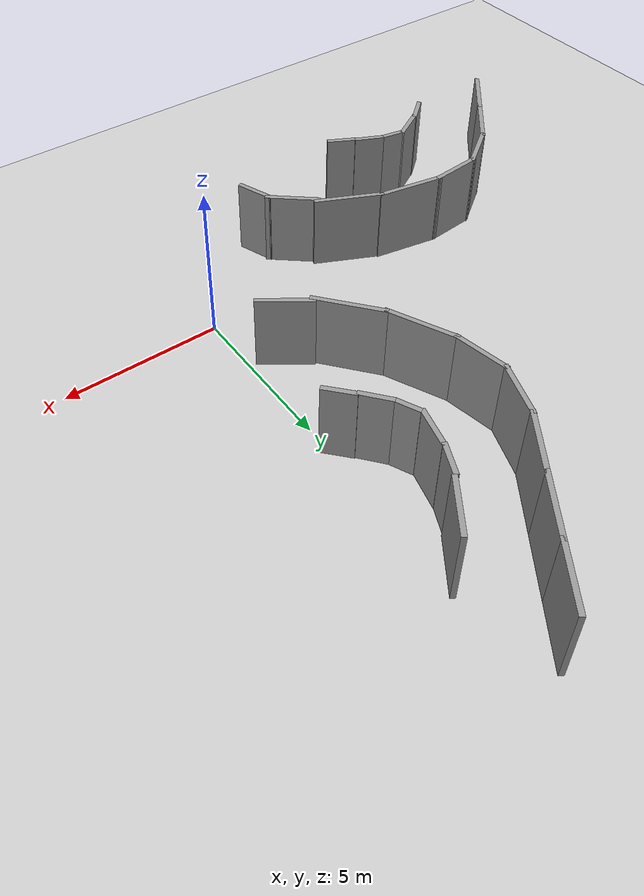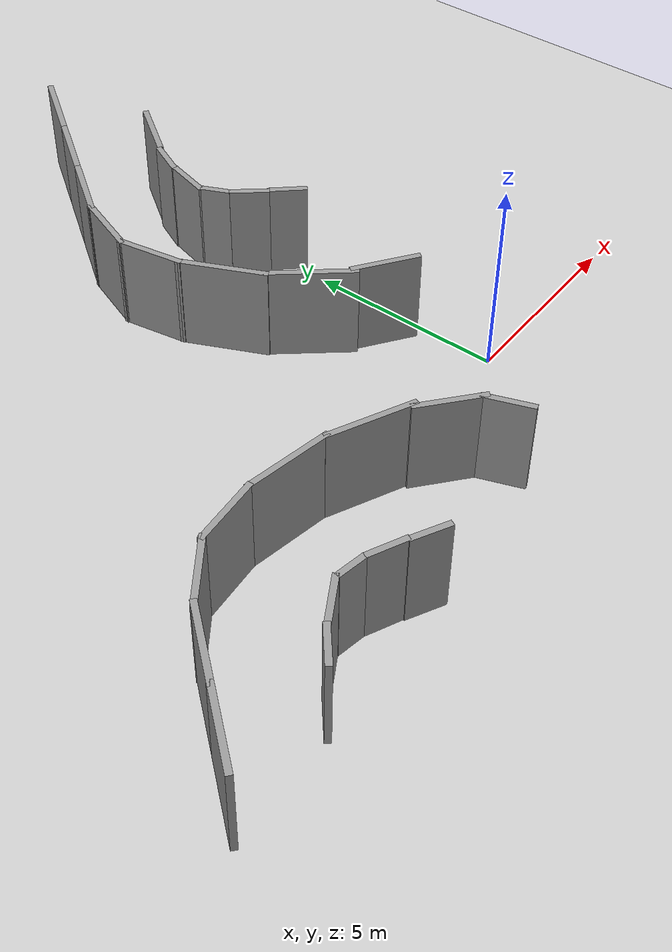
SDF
<sdf version="1.6">
 <world name="default">
  <model name="ground_plane">
   <static>1</static>
   <link name="link">
    <collision name="collision">
     <geometry><plane><normal>0 0 1</normal><size>100 100</size></plane></geometry>
     <surface><friction><ode><mu>100</mu><mu2>50</mu2></ode></friction></surface>
    </collision>
    <visual name="visual">
     <cast_shadows>0</cast_shadows>
     <geometry><plane><normal>0 0 1</normal><size>100 100</size></plane></geometry>
     <material>
      <script><uri>file://media/materials/scripts/gazebo.material</uri><name>Gazebo/Grey</name></script>
     </material>
    </visual>
   </link>
  </model>
  <model name="c-Snail_v3">
   <link name="Wall_34">
    <pose>5.14178 5.70521 0 0 -0 3.14159</pose>
    <visual name="Wall_34_Visual">
     <pose>0 0 1.25 0 -0 0</pose>
     <geometry><box><size>2 0.15 2.5</size></box></geometry>
     <material>
      <script><uri>file://media/materials/scripts/gazebo.material</uri><name>Gazebo/Grey</name></script>
      <ambient>1 1 1 1</ambient>
     </material>
     <meta><layer>0</layer></meta>
    </visual>
    <collision name="Wall_34_Collision">
     <pose>0 0 1.25 0 -0 0</pose>
     <geometry><box><size>2 0.15 2.5</size></box></geometry>
     <surface>
      <friction>
       <ode><mu>1</mu><mu2>1</mu2><fdir1>0 0 0</fdir1><slip1>0</slip1><slip2>0</slip2></ode>
       <torsional>
        <coefficient>1</coefficient>
        <patch_radius>0</patch_radius>
        <surface_radius>0</surface_radius>
        <use_patch_radius>1</use_patch_radius>
        <ode><slip>0</slip></ode>
       </torsional>
      </friction>
      <bounce><restitution_coefficient>0</restitution_coefficient><threshold>1e+06</threshold></bounce>
      <contact>
       <collide_without_contact>0</collide_without_contact>
       <collide_without_contact_bitmask>1</collide_without_contact_bitmask>
       <collide_bitmask>1</collide_bitmask>
       <ode>
        <soft_cfm>0</soft_cfm>
        <soft_erp>0.2</soft_erp>
        <kp>1e+13</kp>
        <kd>1</kd>
        <max_vel>0.01</max_vel>
        <min_depth>0</min_depth>
       </ode>
       <bullet>
        <split_impulse>1</split_impulse>
        <split_impulse_penetration_threshold>-0.01</split_impulse_penetration_threshold>
        <soft_cfm>0</soft_cfm>
        <soft_erp>0.2</soft_erp>
        <kp>1e+13</kp>
        <kd>1</kd>
       </bullet>
      </contact>
     </surface>
    </collision>
   </link>
   <link name="Wall_35">
    <pose>3.29178 5.70521 0 0 -0 3.14159</pose>
    <visual name="Wall_35_Visual">
     <pose>0 0 1.25 0 -0 0</pose>
     <geometry><box><size>2 0.15 2.5</size></box></geometry>
     <material>
      <script><uri>file://media/materials/scripts/gazebo.material</uri><name>Gazebo/Grey</name></script>
      <ambient>1 1 1 1</ambient>
     </material>
     <meta><layer>0</layer></meta>
    </visual>
    <collision name="Wall_35_Collision">
     <pose>0 0 1.25 0 -0 0</pose>
     <geometry><box><size>2 0.15 2.5</size></box></geometry>
     <surface>
      <friction>
       <ode><mu>1</mu><mu2>1</mu2><fdir1>0 0 0</fdir1><slip1>0</slip1><slip2>0</slip2></ode>
       <torsional>
        <coefficient>1</coefficient>
        <patch_radius>0</patch_radius>
        <surface_radius>0</surface_radius>
        <use_patch_radius>1</use_patch_radius>
        <ode><slip>0</slip></ode>
       </torsional>
      </friction>
      <bounce><restitution_coefficient>0</restitution_coefficient><threshold>1e+06</threshold></bounce>
      <contact>
       <collide_without_contact>0</collide_without_contact>
       <collide_without_contact_bitmask>1</collide_without_contact_bitmask>
       <collide_bitmask>1</collide_bitmask>
       <ode>
        <soft_cfm>0</soft_cfm>
        <soft_erp>0.2</soft_erp>
        <kp>1e+13</kp>
        <kd>1</kd>
        <max_vel>0.01</max_vel>
        <min_depth>0</min_depth>
       </ode>
       <bullet>
        <split_impulse>1</split_impulse>
        <split_impulse_penetration_threshold>-0.01</split_impulse_penetration_threshold>
        <soft_cfm>0</soft_cfm>
        <soft_erp>0.2</soft_erp>
        <kp>1e+13</kp>
        <kd>1</kd>
       </bullet>
      </contact>
     </surface>
    </collision>
   </link>
   <link name="Wall_36">
    <pose>1.44178 5.70521 0 0 -0 3.14159</pose>
    <visual name="Wall_36_Visual">
     <pose>0 0 1.25 0 -0 0</pose>
     <geometry><box><size>2 0.15 2.5</size></box></geometry>
     <material>
      <script><uri>file://media/materials/scripts/gazebo.material</uri><name>Gazebo/Grey</name></script>
      <ambient>1 1 1 1</ambient>
     </material>
     <meta><layer>0</layer></meta>
    </visual>
    <collision name="Wall_36_Collision">
     <pose>0 0 1.25 0 -0 0</pose>
     <geometry><box><size>2 0.15 2.5</size></box></geometry>
     <surface>
      <friction>
       <ode><mu>1</mu><mu2>1</mu2><fdir1>0 0 0</fdir1><slip1>0</slip1><slip2>0</slip2></ode>
       <torsional>
        <coefficient>1</coefficient>
        <patch_radius>0</patch_radius>
        <surface_radius>0</surface_radius>
        <use_patch_radius>1</use_patch_radius>
        <ode><slip>0</slip></ode>
       </torsional>
      </friction>
      <bounce><restitution_coefficient>0</restitution_coefficient><threshold>1e+06</threshold></bounce>
      <contact>
       <collide_without_contact>0</collide_without_contact>
       <collide_without_contact_bitmask>1</collide_without_contact_bitmask>
       <collide_bitmask>1</collide_bitmask>
       <ode>
        <soft_cfm>0</soft_cfm>
        <soft_erp>0.2</soft_erp>
        <kp>1e+13</kp>
        <kd>1</kd>
        <max_vel>0.01</max_vel>
        <min_depth>0</min_depth>
       </ode>
       <bullet>
        <split_impulse>1</split_impulse>
        <split_impulse_penetration_threshold>-0.01</split_impulse_penetration_threshold>
        <soft_cfm>0</soft_cfm>
        <soft_erp>0.2</soft_erp>
        <kp>1e+13</kp>
        <kd>1</kd>
       </bullet>
      </contact>
     </surface>
    </collision>
   </link>
   <link name="Wall_37">
    <pose>-0.255959 5.49815 0 0 0 -2.87979</pose>
    <visual name="Wall_37_Visual">
     <pose>0 0 1.25 0 -0 0</pose>
     <geometry><box><size>1.75 0.15 2.5</size></box></geometry>
     <material>
      <script><uri>file://media/materials/scripts/gazebo.material</uri><name>Gazebo/Grey</name></script>
      <ambient>1 1 1 1</ambient>
     </material>
     <meta><layer>0</layer></meta>
    </visual>
    <collision name="Wall_37_Collision">
     <pose>0 0 1.25 0 -0 0</pose>
     <geometry><box><size>1.75 0.15 2.5</size></box></geometry>
     <surface>
      <friction>
       <ode><mu>1</mu><mu2>1</mu2><fdir1>0 0 0</fdir1><slip1>0</slip1><slip2>0</slip2></ode>
       <torsional>
        <coefficient>1</coefficient>
        <patch_radius>0</patch_radius>
        <surface_radius>0</surface_radius>
        <use_patch_radius>1</use_patch_radius>
        <ode><slip>0</slip></ode>
       </torsional>
      </friction>
      <bounce><restitution_coefficient>0</restitution_coefficient><threshold>1e+06</threshold></bounce>
      <contact>
       <collide_without_contact>0</collide_without_contact>
       <collide_without_contact_bitmask>1</collide_without_contact_bitmask>
       <collide_bitmask>1</collide_bitmask>
       <ode>
        <soft_cfm>0</soft_cfm>
        <soft_erp>0.2</soft_erp>
        <kp>1e+13</kp>
        <kd>1</kd>
        <max_vel>0.01</max_vel>
        <min_depth>0</min_depth>
       </ode>
       <bullet>
        <split_impulse>1</split_impulse>
        <split_impulse_penetration_threshold>-0.01</split_impulse_penetration_threshold>
        <soft_cfm>0</soft_cfm>
        <soft_erp>0.2</soft_erp>
        <kp>1e+13</kp>
        <kd>1</kd>
       </bullet>
      </contact>
     </surface>
    </collision>
   </link>
   <link name="Wall_38">
    <pose>-1.59438 4.72541 0 0 0 -2.35619</pose>
    <visual name="Wall_38_Visual">
     <pose>0 0 1.25 0 -0 0</pose>
     <geometry><box><size>1.75 0.15 2.5</size></box></geometry>
     <material>
      <script><uri>file://media/materials/scripts/gazebo.material</uri><name>Gazebo/Grey</name></script>
      <ambient>1 1 1 1</ambient>
     </material>
     <meta><layer>0</layer></meta>
    </visual>
    <collision name="Wall_38_Collision">
     <pose>0 0 1.25 0 -0 0</pose>
     <geometry><box><size>1.75 0.15 2.5</size></box></geometry>
     <surface>
      <friction>
       <ode><mu>1</mu><mu2>1</mu2><fdir1>0 0 0</fdir1><slip1>0</slip1><slip2>0</slip2></ode>
       <torsional>
        <coefficient>1</coefficient>
        <patch_radius>0</patch_radius>
        <surface_radius>0</surface_radius>
        <use_patch_radius>1</use_patch_radius>
        <ode><slip>0</slip></ode>
       </torsional>
      </friction>
      <bounce><restitution_coefficient>0</restitution_coefficient><threshold>1e+06</threshold></bounce>
      <contact>
       <collide_without_contact>0</collide_without_contact>
       <collide_without_contact_bitmask>1</collide_without_contact_bitmask>
       <collide_bitmask>1</collide_bitmask>
       <ode>
        <soft_cfm>0</soft_cfm>
        <soft_erp>0.2</soft_erp>
        <kp>1e+13</kp>
        <kd>1</kd>
        <max_vel>0.01</max_vel>
        <min_depth>0</min_depth>
       </ode>
       <bullet>
        <split_impulse>1</split_impulse>
        <split_impulse_penetration_threshold>-0.01</split_impulse_penetration_threshold>
        <soft_cfm>0</soft_cfm>
        <soft_erp>0.2</soft_erp>
        <kp>1e+13</kp>
        <kd>1</kd>
       </bullet>
      </contact>
     </surface>
    </collision>
   </link>
   <link name="Wall_39">
    <pose>-2.68507 3.2504 0 0 0 -2.0944</pose>
    <visual name="Wall_39_Visual">
     <pose>0 0 1.25 0 -0 0</pose>
     <geometry><box><size>2.25 0.15 2.5</size></box></geometry>
     <material>
      <script><uri>file://media/materials/scripts/gazebo.material</uri><name>Gazebo/Grey</name></script>
      <ambient>1 1 1 1</ambient>
     </material>
     <meta><layer>0</layer></meta>
    </visual>
    <collision name="Wall_39_Collision">
     <pose>0 0 1.25 0 -0 0</pose>
     <geometry><box><size>2.25 0.15 2.5</size></box></geometry>
     <surface>
      <friction>
       <ode><mu>1</mu><mu2>1</mu2><fdir1>0 0 0</fdir1><slip1>0</slip1><slip2>0</slip2></ode>
       <torsional>
        <coefficient>1</coefficient>
        <patch_radius>0</patch_radius>
        <surface_radius>0</surface_radius>
        <use_patch_radius>1</use_patch_radius>
        <ode><slip>0</slip></ode>
       </torsional>
      </friction>
      <bounce><restitution_coefficient>0</restitution_coefficient><threshold>1e+06</threshold></bounce>
      <contact>
       <collide_without_contact>0</collide_without_contact>
       <collide_without_contact_bitmask>1</collide_without_contact_bitmask>
       <collide_bitmask>1</collide_bitmask>
       <ode>
        <soft_cfm>0</soft_cfm>
        <soft_erp>0.2</soft_erp>
        <kp>1e+13</kp>
        <kd>1</kd>
        <max_vel>0.01</max_vel>
        <min_depth>0</min_depth>
       </ode>
       <bullet>
        <split_impulse>1</split_impulse>
        <split_impulse_penetration_threshold>-0.01</split_impulse_penetration_threshold>
        <soft_cfm>0</soft_cfm>
        <soft_erp>0.2</soft_erp>
        <kp>1e+13</kp>
        <kd>1</kd>
       </bullet>
      </contact>
     </surface>
    </collision>
   </link>
   <link name="Wall_40">
    <pose>-3.4661 1.30505 0 0 0 -1.8326</pose>
    <visual name="Wall_40_Visual">
     <pose>0 0 1.25 0 -0 0</pose>
     <geometry><box><size>2.25 0.15 2.5</size></box></geometry>
     <material>
      <script><uri>file://media/materials/scripts/gazebo.material</uri><name>Gazebo/Grey</name></script>
      <ambient>1 1 1 1</ambient>
     </material>
     <meta><layer>0</layer></meta>
    </visual>
    <collision name="Wall_40_Collision">
     <pose>0 0 1.25 0 -0 0</pose>
     <geometry><box><size>2.25 0.15 2.5</size></box></geometry>
     <surface>
      <friction>
       <ode><mu>1</mu><mu2>1</mu2><fdir1>0 0 0</fdir1><slip1>0</slip1><slip2>0</slip2></ode>
       <torsional>
        <coefficient>1</coefficient>
        <patch_radius>0</patch_radius>
        <surface_radius>0</surface_radius>
        <use_patch_radius>1</use_patch_radius>
        <ode><slip>0</slip></ode>
       </torsional>
      </friction>
      <bounce><restitution_coefficient>0</restitution_coefficient><threshold>1e+06</threshold></bounce>
      <contact>
       <collide_without_contact>0</collide_without_contact>
       <collide_without_contact_bitmask>1</collide_without_contact_bitmask>
       <collide_bitmask>1</collide_bitmask>
       <ode>
        <soft_cfm>0</soft_cfm>
        <soft_erp>0.2</soft_erp>
        <kp>1e+13</kp>
        <kd>1</kd>
        <max_vel>0.01</max_vel>
        <min_depth>0</min_depth>
       </ode>
       <bullet>
        <split_impulse>1</split_impulse>
        <split_impulse_penetration_threshold>-0.01</split_impulse_penetration_threshold>
        <soft_cfm>0</soft_cfm>
        <soft_erp>0.2</soft_erp>
        <kp>1e+13</kp>
        <kd>1</kd>
       </bullet>
      </contact>
     </surface>
    </collision>
   </link>
   <link name="Wall_41">
    <pose>-3.63808 -0.467586 0 0 0 -1.5708</pose>
    <visual name="Wall_41_Visual">
     <pose>0 0 1.25 0 -0 0</pose>
     <geometry><box><size>1.75 0.15 2.5</size></box></geometry>
     <material>
      <script><uri>file://media/materials/scripts/gazebo.material</uri><name>Gazebo/Grey</name></script>
      <ambient>1 1 1 1</ambient>
     </material>
     <meta><layer>0</layer></meta>
    </visual>
    <collision name="Wall_41_Collision">
     <pose>0 0 1.25 0 -0 0</pose>
     <geometry><box><size>1.75 0.15 2.5</size></box></geometry>
     <surface>
      <friction>
       <ode><mu>1</mu><mu2>1</mu2><fdir1>0 0 0</fdir1><slip1>0</slip1><slip2>0</slip2></ode>
       <torsional>
        <coefficient>1</coefficient>
        <patch_radius>0</patch_radius>
        <surface_radius>0</surface_radius>
        <use_patch_radius>1</use_patch_radius>
        <ode><slip>0</slip></ode>
       </torsional>
      </friction>
      <bounce><restitution_coefficient>0</restitution_coefficient><threshold>1e+06</threshold></bounce>
      <contact>
       <collide_without_contact>0</collide_without_contact>
       <collide_without_contact_bitmask>1</collide_without_contact_bitmask>
       <collide_bitmask>1</collide_bitmask>
       <ode>
        <soft_cfm>0</soft_cfm>
        <soft_erp>0.2</soft_erp>
        <kp>1e+13</kp>
        <kd>1</kd>
        <max_vel>0.01</max_vel>
        <min_depth>0</min_depth>
       </ode>
       <bullet>
        <split_impulse>1</split_impulse>
        <split_impulse_penetration_threshold>-0.01</split_impulse_penetration_threshold>
        <soft_cfm>0</soft_cfm>
        <soft_erp>0.2</soft_erp>
        <kp>1e+13</kp>
        <kd>1</kd>
       </bullet>
      </contact>
     </surface>
    </collision>
   </link>
   <link name="Wall_61">
    <pose>3.31404 3.52063 0 0 -0 3.14159</pose>
    <visual name="Wall_61_Visual">
     <pose>0 0 1.25 0 -0 0</pose>
     <geometry><box><size>1.75 0.15 2.5</size></box></geometry>
     <material>
      <script><uri>file://media/materials/scripts/gazebo.material</uri><name>Gazebo/Grey</name></script>
      <ambient>1 1 1 1</ambient>
     </material>
     <meta><layer>0</layer></meta>
    </visual>
    <collision name="Wall_61_Collision">
     <pose>0 0 1.25 0 -0 0</pose>
     <geometry><box><size>1.75 0.15 2.5</size></box></geometry>
     <surface>
      <friction>
       <ode><mu>1</mu><mu2>1</mu2><fdir1>0 0 0</fdir1><slip1>0</slip1><slip2>0</slip2></ode>
       <torsional>
        <coefficient>1</coefficient>
        <patch_radius>0</patch_radius>
        <surface_radius>0</surface_radius>
        <use_patch_radius>1</use_patch_radius>
        <ode><slip>0</slip></ode>
       </torsional>
      </friction>
      <bounce><restitution_coefficient>0</restitution_coefficient><threshold>1e+06</threshold></bounce>
      <contact>
       <collide_without_contact>0</collide_without_contact>
       <collide_without_contact_bitmask>1</collide_without_contact_bitmask>
       <collide_bitmask>1</collide_bitmask>
       <ode>
        <soft_cfm>0</soft_cfm>
        <soft_erp>0.2</soft_erp>
        <kp>1e+13</kp>
        <kd>1</kd>
        <max_vel>0.01</max_vel>
        <min_depth>0</min_depth>
       </ode>
       <bullet>
        <split_impulse>1</split_impulse>
        <split_impulse_penetration_threshold>-0.01</split_impulse_penetration_threshold>
        <soft_cfm>0</soft_cfm>
        <soft_erp>0.2</soft_erp>
        <kp>1e+13</kp>
        <kd>1</kd>
       </bullet>
      </contact>
     </surface>
    </collision>
   </link>
   <link name="Wall_62">
    <pose>1.97453 3.47402 0 0 0 -2.96184</pose>
    <visual name="Wall_62_Visual">
     <pose>0 0 1.25 0 -0 0</pose>
     <geometry><box><size>1 0.15 2.5</size></box></geometry>
     <material>
      <script><uri>file://media/materials/scripts/gazebo.material</uri><name>Gazebo/Grey</name></script>
      <ambient>1 1 1 1</ambient>
     </material>
     <meta><layer>0</layer></meta>
    </visual>
    <collision name="Wall_62_Collision">
     <pose>0 0 1.25 0 -0 0</pose>
     <geometry><box><size>1 0.15 2.5</size></box></geometry>
     <surface>
      <friction>
       <ode><mu>1</mu><mu2>1</mu2><fdir1>0 0 0</fdir1><slip1>0</slip1><slip2>0</slip2></ode>
       <torsional>
        <coefficient>1</coefficient>
        <patch_radius>0</patch_radius>
        <surface_radius>0</surface_radius>
        <use_patch_radius>1</use_patch_radius>
        <ode><slip>0</slip></ode>
       </torsional>
      </friction>
      <bounce><restitution_coefficient>0</restitution_coefficient><threshold>1e+06</threshold></bounce>
      <contact>
       <collide_without_contact>0</collide_without_contact>
       <collide_without_contact_bitmask>1</collide_without_contact_bitmask>
       <collide_bitmask>1</collide_bitmask>
       <ode>
        <soft_cfm>0</soft_cfm>
        <soft_erp>0.2</soft_erp>
        <kp>1e+13</kp>
        <kd>1</kd>
        <max_vel>0.01</max_vel>
        <min_depth>0</min_depth>
       </ode>
       <bullet>
        <split_impulse>1</split_impulse>
        <split_impulse_penetration_threshold>-0.01</split_impulse_penetration_threshold>
        <soft_cfm>0</soft_cfm>
        <soft_erp>0.2</soft_erp>
        <kp>1e+13</kp>
        <kd>1</kd>
       </bullet>
      </contact>
     </surface>
    </collision>
   </link>
   <link name="Wall_63">
    <pose>0.99614 3.17664 0 0 0 -2.78252</pose>
    <visual name="Wall_63_Visual">
     <pose>0 0 1.25 0 -0 0</pose>
     <geometry><box><size>1.25 0.15 2.5</size></box></geometry>
     <material>
      <script><uri>file://media/materials/scripts/gazebo.material</uri><name>Gazebo/Grey</name></script>
      <ambient>1 1 1 1</ambient>
     </material>
     <meta><layer>0</layer></meta>
    </visual>
    <collision name="Wall_63_Collision">
     <pose>0 0 1.25 0 -0 0</pose>
     <geometry><box><size>1.25 0.15 2.5</size></box></geometry>
     <surface>
      <friction>
       <ode><mu>1</mu><mu2>1</mu2><fdir1>0 0 0</fdir1><slip1>0</slip1><slip2>0</slip2></ode>
       <torsional>
        <coefficient>1</coefficient>
        <patch_radius>0</patch_radius>
        <surface_radius>0</surface_radius>
        <use_patch_radius>1</use_patch_radius>
        <ode><slip>0</slip></ode>
       </torsional>
      </friction>
      <bounce><restitution_coefficient>0</restitution_coefficient><threshold>1e+06</threshold></bounce>
      <contact>
       <collide_without_contact>0</collide_without_contact>
       <collide_without_contact_bitmask>1</collide_without_contact_bitmask>
       <collide_bitmask>1</collide_bitmask>
       <ode>
        <soft_cfm>0</soft_cfm>
        <soft_erp>0.2</soft_erp>
        <kp>1e+13</kp>
        <kd>1</kd>
        <max_vel>0.01</max_vel>
        <min_depth>0</min_depth>
       </ode>
       <bullet>
        <split_impulse>1</split_impulse>
        <split_impulse_penetration_threshold>-0.01</split_impulse_penetration_threshold>
        <soft_cfm>0</soft_cfm>
        <soft_erp>0.2</soft_erp>
        <kp>1e+13</kp>
        <kd>1</kd>
       </bullet>
      </contact>
     </surface>
    </collision>
   </link>
   <link name="Wall_64">
    <pose>0.28704 2.63 0 0 0 -2.0944</pose>
    <visual name="Wall_64_Visual">
     <pose>0 0 1.25 0 -0 0</pose>
     <geometry><box><size>0.75 0.15 2.5</size></box></geometry>
     <material>
      <script><uri>file://media/materials/scripts/gazebo.material</uri><name>Gazebo/Grey</name></script>
      <ambient>1 1 1 1</ambient>
     </material>
     <meta><layer>0</layer></meta>
    </visual>
    <collision name="Wall_64_Collision">
     <pose>0 0 1.25 0 -0 0</pose>
     <geometry><box><size>0.75 0.15 2.5</size></box></geometry>
     <surface>
      <friction>
       <ode><mu>1</mu><mu2>1</mu2><fdir1>0 0 0</fdir1><slip1>0</slip1><slip2>0</slip2></ode>
       <torsional>
        <coefficient>1</coefficient>
        <patch_radius>0</patch_radius>
        <surface_radius>0</surface_radius>
        <use_patch_radius>1</use_patch_radius>
        <ode><slip>0</slip></ode>
       </torsional>
      </friction>
      <bounce><restitution_coefficient>0</restitution_coefficient><threshold>1e+06</threshold></bounce>
      <contact>
       <collide_without_contact>0</collide_without_contact>
       <collide_without_contact_bitmask>1</collide_without_contact_bitmask>
       <collide_bitmask>1</collide_bitmask>
       <ode>
        <soft_cfm>0</soft_cfm>
        <soft_erp>0.2</soft_erp>
        <kp>1e+13</kp>
        <kd>1</kd>
        <max_vel>0.01</max_vel>
        <min_depth>0</min_depth>
       </ode>
       <bullet>
        <split_impulse>1</split_impulse>
        <split_impulse_penetration_threshold>-0.01</split_impulse_penetration_threshold>
        <soft_cfm>0</soft_cfm>
        <soft_erp>0.2</soft_erp>
        <kp>1e+13</kp>
        <kd>1</kd>
       </bullet>
      </contact>
     </surface>
    </collision>
   </link>
   <link name="Wall_65">
    <pose>-0.020213 1.84319 0 0 0 -1.8326</pose>
    <visual name="Wall_65_Visual">
     <pose>0 0 1.25 0 -0 0</pose>
     <geometry><box><size>1 0.15 2.5</size></box></geometry>
     <material>
      <script><uri>file://media/materials/scripts/gazebo.material</uri><name>Gazebo/Grey</name></script>
      <ambient>1 1 1 1</ambient>
     </material>
     <meta><layer>0</layer></meta>
    </visual>
    <collision name="Wall_65_Collision">
     <pose>0 0 1.25 0 -0 0</pose>
     <geometry><box><size>1 0.15 2.5</size></box></geometry>
     <surface>
      <friction>
       <ode><mu>1</mu><mu2>1</mu2><fdir1>0 0 0</fdir1><slip1>0</slip1><slip2>0</slip2></ode>
       <torsional>
        <coefficient>1</coefficient>
        <patch_radius>0</patch_radius>
        <surface_radius>0</surface_radius>
        <use_patch_radius>1</use_patch_radius>
        <ode><slip>0</slip></ode>
       </torsional>
      </friction>
      <bounce><restitution_coefficient>0</restitution_coefficient><threshold>1e+06</threshold></bounce>
      <contact>
       <collide_without_contact>0</collide_without_contact>
       <collide_without_contact_bitmask>1</collide_without_contact_bitmask>
       <collide_bitmask>1</collide_bitmask>
       <ode>
        <soft_cfm>0</soft_cfm>
        <soft_erp>0.2</soft_erp>
        <kp>1e+13</kp>
        <kd>1</kd>
        <max_vel>0.01</max_vel>
        <min_depth>0</min_depth>
       </ode>
       <bullet>
        <split_impulse>1</split_impulse>
        <split_impulse_penetration_threshold>-0.01</split_impulse_penetration_threshold>
        <soft_cfm>0</soft_cfm>
        <soft_erp>0.2</soft_erp>
        <kp>1e+13</kp>
        <kd>1</kd>
       </bullet>
      </contact>
     </surface>
    </collision>
   </link>
   <link name="Wall_66">
    <pose>-0.21942 0.921775 0 0 0 -1.79109</pose>
    <visual name="Wall_66_Visual">
     <pose>0 0 1.25 0 -0 0</pose>
     <geometry><box><size>1 0.15 2.5</size></box></geometry>
     <material>
      <script><uri>file://media/materials/scripts/gazebo.material</uri><name>Gazebo/Grey</name></script>
      <ambient>1 1 1 1</ambient>
     </material>
     <meta><layer>0</layer></meta>
    </visual>
    <collision name="Wall_66_Collision">
     <pose>0 0 1.25 0 -0 0</pose>
     <geometry><box><size>1 0.15 2.5</size></box></geometry>
     <surface>
      <friction>
       <ode><mu>1</mu><mu2>1</mu2><fdir1>0 0 0</fdir1><slip1>0</slip1><slip2>0</slip2></ode>
       <torsional>
        <coefficient>1</coefficient>
        <patch_radius>0</patch_radius>
        <surface_radius>0</surface_radius>
        <use_patch_radius>1</use_patch_radius>
        <ode><slip>0</slip></ode>
       </torsional>
      </friction>
      <bounce><restitution_coefficient>0</restitution_coefficient><threshold>1e+06</threshold></bounce>
      <contact>
       <collide_without_contact>0</collide_without_contact>
       <collide_without_contact_bitmask>1</collide_without_contact_bitmask>
       <collide_bitmask>1</collide_bitmask>
       <ode>
        <soft_cfm>0</soft_cfm>
        <soft_erp>0.2</soft_erp>
        <kp>1e+13</kp>
        <kd>1</kd>
        <max_vel>0.01</max_vel>
        <min_depth>0</min_depth>
       </ode>
       <bullet>
        <split_impulse>1</split_impulse>
        <split_impulse_penetration_threshold>-0.01</split_impulse_penetration_threshold>
        <soft_cfm>0</soft_cfm>
        <soft_erp>0.2</soft_erp>
        <kp>1e+13</kp>
        <kd>1</kd>
       </bullet>
      </contact>
     </surface>
    </collision>
   </link>
   <static>1</static>
   <pose>0.756276 5.71208 0 0 -0 0.957297</pose>
  </model>
  <model name="c-Snail_v3_clone">
   <link name="Wall_35">
    <pose>3.29178 5.70521 0 0 -0 3.14159</pose>
    <visual name="Wall_35_Visual">
     <pose>0 0 1.25 0 -0 0</pose>
     <geometry><box><size>2 0.15 2.5</size></box></geometry>
     <material>
      <script><uri>file://media/materials/scripts/gazebo.material</uri><name>Gazebo/Grey</name></script>
      <ambient>1 1 1 1</ambient>
     </material>
     <meta><layer>0</layer></meta>
    </visual>
    <collision name="Wall_35_Collision">
     <pose>0 0 1.25 0 -0 0</pose>
     <geometry><box><size>2 0.15 2.5</size></box></geometry>
     <surface>
      <friction>
       <ode><mu>1</mu><mu2>1</mu2><fdir1>0 0 0</fdir1><slip1>0</slip1><slip2>0</slip2></ode>
       <torsional>
        <coefficient>1</coefficient>
        <patch_radius>0</patch_radius>
        <surface_radius>0</surface_radius>
        <use_patch_radius>1</use_patch_radius>
        <ode><slip>0</slip></ode>
       </torsional>
      </friction>
      <bounce><restitution_coefficient>0</restitution_coefficient><threshold>1e+06</threshold></bounce>
      <contact>
       <collide_without_contact>0</collide_without_contact>
       <collide_without_contact_bitmask>1</collide_without_contact_bitmask>
       <collide_bitmask>1</collide_bitmask>
       <ode>
        <soft_cfm>0</soft_cfm>
        <soft_erp>0.2</soft_erp>
        <kp>1e+13</kp>
        <kd>1</kd>
        <max_vel>0.01</max_vel>
        <min_depth>0</min_depth>
       </ode>
       <bullet>
        <split_impulse>1</split_impulse>
        <split_impulse_penetration_threshold>-0.01</split_impulse_penetration_threshold>
        <soft_cfm>0</soft_cfm>
        <soft_erp>0.2</soft_erp>
        <kp>1e+13</kp>
        <kd>1</kd>
       </bullet>
      </contact>
     </surface>
    </collision>
   </link>
   <link name="Wall_36">
    <pose>1.44178 5.70521 0 0 -0 3.14159</pose>
    <visual name="Wall_36_Visual">
     <pose>0 0 1.25 0 -0 0</pose>
     <geometry><box><size>2 0.15 2.5</size></box></geometry>
     <material>
      <script><uri>file://media/materials/scripts/gazebo.material</uri><name>Gazebo/Grey</name></script>
      <ambient>1 1 1 1</ambient>
     </material>
     <meta><layer>0</layer></meta>
    </visual>
    <collision name="Wall_36_Collision">
     <pose>0 0 1.25 0 -0 0</pose>
     <geometry><box><size>2 0.15 2.5</size></box></geometry>
     <surface>
      <friction>
       <ode><mu>1</mu><mu2>1</mu2><fdir1>0 0 0</fdir1><slip1>0</slip1><slip2>0</slip2></ode>
       <torsional>
        <coefficient>1</coefficient>
        <patch_radius>0</patch_radius>
        <surface_radius>0</surface_radius>
        <use_patch_radius>1</use_patch_radius>
        <ode><slip>0</slip></ode>
       </torsional>
      </friction>
      <bounce><restitution_coefficient>0</restitution_coefficient><threshold>1e+06</threshold></bounce>
      <contact>
       <collide_without_contact>0</collide_without_contact>
       <collide_without_contact_bitmask>1</collide_without_contact_bitmask>
       <collide_bitmask>1</collide_bitmask>
       <ode>
        <soft_cfm>0</soft_cfm>
        <soft_erp>0.2</soft_erp>
        <kp>1e+13</kp>
        <kd>1</kd>
        <max_vel>0.01</max_vel>
        <min_depth>0</min_depth>
       </ode>
       <bullet>
        <split_impulse>1</split_impulse>
        <split_impulse_penetration_threshold>-0.01</split_impulse_penetration_threshold>
        <soft_cfm>0</soft_cfm>
        <soft_erp>0.2</soft_erp>
        <kp>1e+13</kp>
        <kd>1</kd>
       </bullet>
      </contact>
     </surface>
    </collision>
   </link>
   <link name="Wall_37">
    <pose>-0.255959 5.49815 0 0 0 -2.87979</pose>
    <visual name="Wall_37_Visual">
     <pose>0 0 1.25 0 -0 0</pose>
     <geometry><box><size>1.75 0.15 2.5</size></box></geometry>
     <material>
      <script><uri>file://media/materials/scripts/gazebo.material</uri><name>Gazebo/Grey</name></script>
      <ambient>1 1 1 1</ambient>
     </material>
     <meta><layer>0</layer></meta>
    </visual>
    <collision name="Wall_37_Collision">
     <pose>0 0 1.25 0 -0 0</pose>
     <geometry><box><size>1.75 0.15 2.5</size></box></geometry>
     <surface>
      <friction>
       <ode><mu>1</mu><mu2>1</mu2><fdir1>0 0 0</fdir1><slip1>0</slip1><slip2>0</slip2></ode>
       <torsional>
        <coefficient>1</coefficient>
        <patch_radius>0</patch_radius>
        <surface_radius>0</surface_radius>
        <use_patch_radius>1</use_patch_radius>
        <ode><slip>0</slip></ode>
       </torsional>
      </friction>
      <bounce><restitution_coefficient>0</restitution_coefficient><threshold>1e+06</threshold></bounce>
      <contact>
       <collide_without_contact>0</collide_without_contact>
       <collide_without_contact_bitmask>1</collide_without_contact_bitmask>
       <collide_bitmask>1</collide_bitmask>
       <ode>
        <soft_cfm>0</soft_cfm>
        <soft_erp>0.2</soft_erp>
        <kp>1e+13</kp>
        <kd>1</kd>
        <max_vel>0.01</max_vel>
        <min_depth>0</min_depth>
       </ode>
       <bullet>
        <split_impulse>1</split_impulse>
        <split_impulse_penetration_threshold>-0.01</split_impulse_penetration_threshold>
        <soft_cfm>0</soft_cfm>
        <soft_erp>0.2</soft_erp>
        <kp>1e+13</kp>
        <kd>1</kd>
       </bullet>
      </contact>
     </surface>
    </collision>
   </link>
   <link name="Wall_38">
    <pose>-1.59438 4.72541 0 0 0 -2.35619</pose>
    <visual name="Wall_38_Visual">
     <pose>0 0 1.25 0 -0 0</pose>
     <geometry><box><size>1.75 0.15 2.5</size></box></geometry>
     <material>
      <script><uri>file://media/materials/scripts/gazebo.material</uri><name>Gazebo/Grey</name></script>
      <ambient>1 1 1 1</ambient>
     </material>
     <meta><layer>0</layer></meta>
    </visual>
    <collision name="Wall_38_Collision">
     <pose>0 0 1.25 0 -0 0</pose>
     <geometry><box><size>1.75 0.15 2.5</size></box></geometry>
     <surface>
      <friction>
       <ode><mu>1</mu><mu2>1</mu2><fdir1>0 0 0</fdir1><slip1>0</slip1><slip2>0</slip2></ode>
       <torsional>
        <coefficient>1</coefficient>
        <patch_radius>0</patch_radius>
        <surface_radius>0</surface_radius>
        <use_patch_radius>1</use_patch_radius>
        <ode><slip>0</slip></ode>
       </torsional>
      </friction>
      <bounce><restitution_coefficient>0</restitution_coefficient><threshold>1e+06</threshold></bounce>
      <contact>
       <collide_without_contact>0</collide_without_contact>
       <collide_without_contact_bitmask>1</collide_without_contact_bitmask>
       <collide_bitmask>1</collide_bitmask>
       <ode>
        <soft_cfm>0</soft_cfm>
        <soft_erp>0.2</soft_erp>
        <kp>1e+13</kp>
        <kd>1</kd>
        <max_vel>0.01</max_vel>
        <min_depth>0</min_depth>
       </ode>
       <bullet>
        <split_impulse>1</split_impulse>
        <split_impulse_penetration_threshold>-0.01</split_impulse_penetration_threshold>
        <soft_cfm>0</soft_cfm>
        <soft_erp>0.2</soft_erp>
        <kp>1e+13</kp>
        <kd>1</kd>
       </bullet>
      </contact>
     </surface>
    </collision>
   </link>
   <link name="Wall_39">
    <pose>-2.68507 3.2504 0 0 0 -2.0944</pose>
    <visual name="Wall_39_Visual">
     <pose>0 0 1.25 0 -0 0</pose>
     <geometry><box><size>2.25 0.15 2.5</size></box></geometry>
     <material>
      <script><uri>file://media/materials/scripts/gazebo.material</uri><name>Gazebo/Grey</name></script>
      <ambient>1 1 1 1</ambient>
     </material>
     <meta><layer>0</layer></meta>
    </visual>
    <collision name="Wall_39_Collision">
     <pose>0 0 1.25 0 -0 0</pose>
     <geometry><box><size>2.25 0.15 2.5</size></box></geometry>
     <surface>
      <friction>
       <ode><mu>1</mu><mu2>1</mu2><fdir1>0 0 0</fdir1><slip1>0</slip1><slip2>0</slip2></ode>
       <torsional>
        <coefficient>1</coefficient>
        <patch_radius>0</patch_radius>
        <surface_radius>0</surface_radius>
        <use_patch_radius>1</use_patch_radius>
        <ode><slip>0</slip></ode>
       </torsional>
      </friction>
      <bounce><restitution_coefficient>0</restitution_coefficient><threshold>1e+06</threshold></bounce>
      <contact>
       <collide_without_contact>0</collide_without_contact>
       <collide_without_contact_bitmask>1</collide_without_contact_bitmask>
       <collide_bitmask>1</collide_bitmask>
       <ode>
        <soft_cfm>0</soft_cfm>
        <soft_erp>0.2</soft_erp>
        <kp>1e+13</kp>
        <kd>1</kd>
        <max_vel>0.01</max_vel>
        <min_depth>0</min_depth>
       </ode>
       <bullet>
        <split_impulse>1</split_impulse>
        <split_impulse_penetration_threshold>-0.01</split_impulse_penetration_threshold>
        <soft_cfm>0</soft_cfm>
        <soft_erp>0.2</soft_erp>
        <kp>1e+13</kp>
        <kd>1</kd>
       </bullet>
      </contact>
     </surface>
    </collision>
   </link>
   <link name="Wall_40">
    <pose>-3.4661 1.30505 0 0 0 -1.8326</pose>
    <visual name="Wall_40_Visual">
     <pose>0 0 1.25 0 -0 0</pose>
     <geometry><box><size>2.25 0.15 2.5</size></box></geometry>
     <material>
      <script><uri>file://media/materials/scripts/gazebo.material</uri><name>Gazebo/Grey</name></script>
      <ambient>1 1 1 1</ambient>
     </material>
     <meta><layer>0</layer></meta>
    </visual>
    <collision name="Wall_40_Collision">
     <pose>0 0 1.25 0 -0 0</pose>
     <geometry><box><size>2.25 0.15 2.5</size></box></geometry>
     <surface>
      <friction>
       <ode><mu>1</mu><mu2>1</mu2><fdir1>0 0 0</fdir1><slip1>0</slip1><slip2>0</slip2></ode>
       <torsional>
        <coefficient>1</coefficient>
        <patch_radius>0</patch_radius>
        <surface_radius>0</surface_radius>
        <use_patch_radius>1</use_patch_radius>
        <ode><slip>0</slip></ode>
       </torsional>
      </friction>
      <bounce><restitution_coefficient>0</restitution_coefficient><threshold>1e+06</threshold></bounce>
      <contact>
       <collide_without_contact>0</collide_without_contact>
       <collide_without_contact_bitmask>1</collide_without_contact_bitmask>
       <collide_bitmask>1</collide_bitmask>
       <ode>
        <soft_cfm>0</soft_cfm>
        <soft_erp>0.2</soft_erp>
        <kp>1e+13</kp>
        <kd>1</kd>
        <max_vel>0.01</max_vel>
        <min_depth>0</min_depth>
       </ode>
       <bullet>
        <split_impulse>1</split_impulse>
        <split_impulse_penetration_threshold>-0.01</split_impulse_penetration_threshold>
        <soft_cfm>0</soft_cfm>
        <soft_erp>0.2</soft_erp>
        <kp>1e+13</kp>
        <kd>1</kd>
       </bullet>
      </contact>
     </surface>
    </collision>
   </link>
   <link name="Wall_41">
    <pose>-3.63808 -0.467586 0 0 0 -1.5708</pose>
    <visual name="Wall_41_Visual">
     <pose>0 0 1.25 0 -0 0</pose>
     <geometry><box><size>1.75 0.15 2.5</size></box></geometry>
     <material>
      <script><uri>file://media/materials/scripts/gazebo.material</uri><name>Gazebo/Grey</name></script>
      <ambient>1 1 1 1</ambient>
     </material>
     <meta><layer>0</layer></meta>
    </visual>
    <collision name="Wall_41_Collision">
     <pose>0 0 1.25 0 -0 0</pose>
     <geometry><box><size>1.75 0.15 2.5</size></box></geometry>
     <surface>
      <friction>
       <ode><mu>1</mu><mu2>1</mu2><fdir1>0 0 0</fdir1><slip1>0</slip1><slip2>0</slip2></ode>
       <torsional>
        <coefficient>1</coefficient>
        <patch_radius>0</patch_radius>
        <surface_radius>0</surface_radius>
        <use_patch_radius>1</use_patch_radius>
        <ode><slip>0</slip></ode>
       </torsional>
      </friction>
      <bounce><restitution_coefficient>0</restitution_coefficient><threshold>1e+06</threshold></bounce>
      <contact>
       <collide_without_contact>0</collide_without_contact>
       <collide_without_contact_bitmask>1</collide_without_contact_bitmask>
       <collide_bitmask>1</collide_bitmask>
       <ode>
        <soft_cfm>0</soft_cfm>
        <soft_erp>0.2</soft_erp>
        <kp>1e+13</kp>
        <kd>1</kd>
        <max_vel>0.01</max_vel>
        <min_depth>0</min_depth>
       </ode>
       <bullet>
        <split_impulse>1</split_impulse>
        <split_impulse_penetration_threshold>-0.01</split_impulse_penetration_threshold>
        <soft_cfm>0</soft_cfm>
        <soft_erp>0.2</soft_erp>
        <kp>1e+13</kp>
        <kd>1</kd>
       </bullet>
      </contact>
     </surface>
    </collision>
   </link>
   <link name="Wall_42">
    <pose>-3.35514 -1.67487 0 0 0 -1.0472</pose>
    <visual name="Wall_42_Visual">
     <pose>0 0 1.25 0 -0 0</pose>
     <geometry><box><size>1.25 0.15 2.5</size></box></geometry>
     <material>
      <script><uri>file://media/materials/scripts/gazebo.material</uri><name>Gazebo/Grey</name></script>
      <ambient>1 1 1 1</ambient>
     </material>
     <meta><layer>0</layer></meta>
    </visual>
    <collision name="Wall_42_Collision">
     <pose>0 0 1.25 0 -0 0</pose>
     <geometry><box><size>1.25 0.15 2.5</size></box></geometry>
     <surface>
      <friction>
       <ode><mu>1</mu><mu2>1</mu2><fdir1>0 0 0</fdir1><slip1>0</slip1><slip2>0</slip2></ode>
       <torsional>
        <coefficient>1</coefficient>
        <patch_radius>0</patch_radius>
        <surface_radius>0</surface_radius>
        <use_patch_radius>1</use_patch_radius>
        <ode><slip>0</slip></ode>
       </torsional>
      </friction>
      <bounce><restitution_coefficient>0</restitution_coefficient><threshold>1e+06</threshold></bounce>
      <contact>
       <collide_without_contact>0</collide_without_contact>
       <collide_without_contact_bitmask>1</collide_without_contact_bitmask>
       <collide_bitmask>1</collide_bitmask>
       <ode>
        <soft_cfm>0</soft_cfm>
        <soft_erp>0.2</soft_erp>
        <kp>1e+13</kp>
        <kd>1</kd>
        <max_vel>0.01</max_vel>
        <min_depth>0</min_depth>
       </ode>
       <bullet>
        <split_impulse>1</split_impulse>
        <split_impulse_penetration_threshold>-0.01</split_impulse_penetration_threshold>
        <soft_cfm>0</soft_cfm>
        <soft_erp>0.2</soft_erp>
        <kp>1e+13</kp>
        <kd>1</kd>
       </bullet>
      </contact>
     </surface>
    </collision>
   </link>
   <link name="Wall_62">
    <pose>1.97453 3.47402 0 0 0 -2.96184</pose>
    <visual name="Wall_62_Visual">
     <pose>0 0 1.25 0 -0 0</pose>
     <geometry><box><size>1 0.15 2.5</size></box></geometry>
     <material>
      <script><uri>file://media/materials/scripts/gazebo.material</uri><name>Gazebo/Grey</name></script>
      <ambient>1 1 1 1</ambient>
     </material>
     <meta><layer>0</layer></meta>
    </visual>
    <collision name="Wall_62_Collision">
     <pose>0 0 1.25 0 -0 0</pose>
     <geometry><box><size>1 0.15 2.5</size></box></geometry>
     <surface>
      <friction>
       <ode><mu>1</mu><mu2>1</mu2><fdir1>0 0 0</fdir1><slip1>0</slip1><slip2>0</slip2></ode>
       <torsional>
        <coefficient>1</coefficient>
        <patch_radius>0</patch_radius>
        <surface_radius>0</surface_radius>
        <use_patch_radius>1</use_patch_radius>
        <ode><slip>0</slip></ode>
       </torsional>
      </friction>
      <bounce><restitution_coefficient>0</restitution_coefficient><threshold>1e+06</threshold></bounce>
      <contact>
       <collide_without_contact>0</collide_without_contact>
       <collide_without_contact_bitmask>1</collide_without_contact_bitmask>
       <collide_bitmask>1</collide_bitmask>
       <ode>
        <soft_cfm>0</soft_cfm>
        <soft_erp>0.2</soft_erp>
        <kp>1e+13</kp>
        <kd>1</kd>
        <max_vel>0.01</max_vel>
        <min_depth>0</min_depth>
       </ode>
       <bullet>
        <split_impulse>1</split_impulse>
        <split_impulse_penetration_threshold>-0.01</split_impulse_penetration_threshold>
        <soft_cfm>0</soft_cfm>
        <soft_erp>0.2</soft_erp>
        <kp>1e+13</kp>
        <kd>1</kd>
       </bullet>
      </contact>
     </surface>
    </collision>
   </link>
   <link name="Wall_63">
    <pose>0.99614 3.17664 0 0 0 -2.78252</pose>
    <visual name="Wall_63_Visual">
     <pose>0 0 1.25 0 -0 0</pose>
     <geometry><box><size>1.25 0.15 2.5</size></box></geometry>
     <material>
      <script><uri>file://media/materials/scripts/gazebo.material</uri><name>Gazebo/Grey</name></script>
      <ambient>1 1 1 1</ambient>
     </material>
     <meta><layer>0</layer></meta>
    </visual>
    <collision name="Wall_63_Collision">
     <pose>0 0 1.25 0 -0 0</pose>
     <geometry><box><size>1.25 0.15 2.5</size></box></geometry>
     <surface>
      <friction>
       <ode><mu>1</mu><mu2>1</mu2><fdir1>0 0 0</fdir1><slip1>0</slip1><slip2>0</slip2></ode>
       <torsional>
        <coefficient>1</coefficient>
        <patch_radius>0</patch_radius>
        <surface_radius>0</surface_radius>
        <use_patch_radius>1</use_patch_radius>
        <ode><slip>0</slip></ode>
       </torsional>
      </friction>
      <bounce><restitution_coefficient>0</restitution_coefficient><threshold>1e+06</threshold></bounce>
      <contact>
       <collide_without_contact>0</collide_without_contact>
       <collide_without_contact_bitmask>1</collide_without_contact_bitmask>
       <collide_bitmask>1</collide_bitmask>
       <ode>
        <soft_cfm>0</soft_cfm>
        <soft_erp>0.2</soft_erp>
        <kp>1e+13</kp>
        <kd>1</kd>
        <max_vel>0.01</max_vel>
        <min_depth>0</min_depth>
       </ode>
       <bullet>
        <split_impulse>1</split_impulse>
        <split_impulse_penetration_threshold>-0.01</split_impulse_penetration_threshold>
        <soft_cfm>0</soft_cfm>
        <soft_erp>0.2</soft_erp>
        <kp>1e+13</kp>
        <kd>1</kd>
       </bullet>
      </contact>
     </surface>
    </collision>
   </link>
   <link name="Wall_64">
    <pose>0.28704 2.63 0 0 0 -2.0944</pose>
    <visual name="Wall_64_Visual">
     <pose>0 0 1.25 0 -0 0</pose>
     <geometry><box><size>0.75 0.15 2.5</size></box></geometry>
     <material>
      <script><uri>file://media/materials/scripts/gazebo.material</uri><name>Gazebo/Grey</name></script>
      <ambient>1 1 1 1</ambient>
     </material>
     <meta><layer>0</layer></meta>
    </visual>
    <collision name="Wall_64_Collision">
     <pose>0 0 1.25 0 -0 0</pose>
     <geometry><box><size>0.75 0.15 2.5</size></box></geometry>
     <surface>
      <friction>
       <ode><mu>1</mu><mu2>1</mu2><fdir1>0 0 0</fdir1><slip1>0</slip1><slip2>0</slip2></ode>
       <torsional>
        <coefficient>1</coefficient>
        <patch_radius>0</patch_radius>
        <surface_radius>0</surface_radius>
        <use_patch_radius>1</use_patch_radius>
        <ode><slip>0</slip></ode>
       </torsional>
      </friction>
      <bounce><restitution_coefficient>0</restitution_coefficient><threshold>1e+06</threshold></bounce>
      <contact>
       <collide_without_contact>0</collide_without_contact>
       <collide_without_contact_bitmask>1</collide_without_contact_bitmask>
       <collide_bitmask>1</collide_bitmask>
       <ode>
        <soft_cfm>0</soft_cfm>
        <soft_erp>0.2</soft_erp>
        <kp>1e+13</kp>
        <kd>1</kd>
        <max_vel>0.01</max_vel>
        <min_depth>0</min_depth>
       </ode>
       <bullet>
        <split_impulse>1</split_impulse>
        <split_impulse_penetration_threshold>-0.01</split_impulse_penetration_threshold>
        <soft_cfm>0</soft_cfm>
        <soft_erp>0.2</soft_erp>
        <kp>1e+13</kp>
        <kd>1</kd>
       </bullet>
      </contact>
     </surface>
    </collision>
   </link>
   <link name="Wall_65">
    <pose>-0.020213 1.84319 0 0 0 -1.8326</pose>
    <visual name="Wall_65_Visual">
     <pose>0 0 1.25 0 -0 0</pose>
     <geometry><box><size>1 0.15 2.5</size></box></geometry>
     <material>
      <script><uri>file://media/materials/scripts/gazebo.material</uri><name>Gazebo/Grey</name></script>
      <ambient>1 1 1 1</ambient>
     </material>
     <meta><layer>0</layer></meta>
    </visual>
    <collision name="Wall_65_Collision">
     <pose>0 0 1.25 0 -0 0</pose>
     <geometry><box><size>1 0.15 2.5</size></box></geometry>
     <surface>
      <friction>
       <ode><mu>1</mu><mu2>1</mu2><fdir1>0 0 0</fdir1><slip1>0</slip1><slip2>0</slip2></ode>
       <torsional>
        <coefficient>1</coefficient>
        <patch_radius>0</patch_radius>
        <surface_radius>0</surface_radius>
        <use_patch_radius>1</use_patch_radius>
        <ode><slip>0</slip></ode>
       </torsional>
      </friction>
      <bounce><restitution_coefficient>0</restitution_coefficient><threshold>1e+06</threshold></bounce>
      <contact>
       <collide_without_contact>0</collide_without_contact>
       <collide_without_contact_bitmask>1</collide_without_contact_bitmask>
       <collide_bitmask>1</collide_bitmask>
       <ode>
        <soft_cfm>0</soft_cfm>
        <soft_erp>0.2</soft_erp>
        <kp>1e+13</kp>
        <kd>1</kd>
        <max_vel>0.01</max_vel>
        <min_depth>0</min_depth>
       </ode>
       <bullet>
        <split_impulse>1</split_impulse>
        <split_impulse_penetration_threshold>-0.01</split_impulse_penetration_threshold>
        <soft_cfm>0</soft_cfm>
        <soft_erp>0.2</soft_erp>
        <kp>1e+13</kp>
        <kd>1</kd>
       </bullet>
      </contact>
     </surface>
    </collision>
   </link>
   <link name="Wall_66">
    <pose>-0.21942 0.921775 0 0 0 -1.79109</pose>
    <visual name="Wall_66_Visual">
     <pose>0 0 1.25 0 -0 0</pose>
     <geometry><box><size>1 0.15 2.5</size></box></geometry>
     <material>
      <script><uri>file://media/materials/scripts/gazebo.material</uri><name>Gazebo/Grey</name></script>
      <ambient>1 1 1 1</ambient>
     </material>
     <meta><layer>0</layer></meta>
    </visual>
    <collision name="Wall_66_Collision">
     <pose>0 0 1.25 0 -0 0</pose>
     <geometry><box><size>1 0.15 2.5</size></box></geometry>
     <surface>
      <friction>
       <ode><mu>1</mu><mu2>1</mu2><fdir1>0 0 0</fdir1><slip1>0</slip1><slip2>0</slip2></ode>
       <torsional>
        <coefficient>1</coefficient>
        <patch_radius>0</patch_radius>
        <surface_radius>0</surface_radius>
        <use_patch_radius>1</use_patch_radius>
        <ode><slip>0</slip></ode>
       </torsional>
      </friction>
      <bounce><restitution_coefficient>0</restitution_coefficient><threshold>1e+06</threshold></bounce>
      <contact>
       <collide_without_contact>0</collide_without_contact>
       <collide_without_contact_bitmask>1</collide_without_contact_bitmask>
       <collide_bitmask>1</collide_bitmask>
       <ode>
        <soft_cfm>0</soft_cfm>
        <soft_erp>0.2</soft_erp>
        <kp>1e+13</kp>
        <kd>1</kd>
        <max_vel>0.01</max_vel>
        <min_depth>0</min_depth>
       </ode>
       <bullet>
        <split_impulse>1</split_impulse>
        <split_impulse_penetration_threshold>-0.01</split_impulse_penetration_threshold>
        <soft_cfm>0</soft_cfm>
        <soft_erp>0.2</soft_erp>
        <kp>1e+13</kp>
        <kd>1</kd>
       </bullet>
      </contact>
     </surface>
    </collision>
   </link>
   <static>1</static>
   <pose>-6.58324 -3.80514 2.49855 3.14058 0.001205 -2.26984</pose>
  </model>
 </world>
</sdf>
